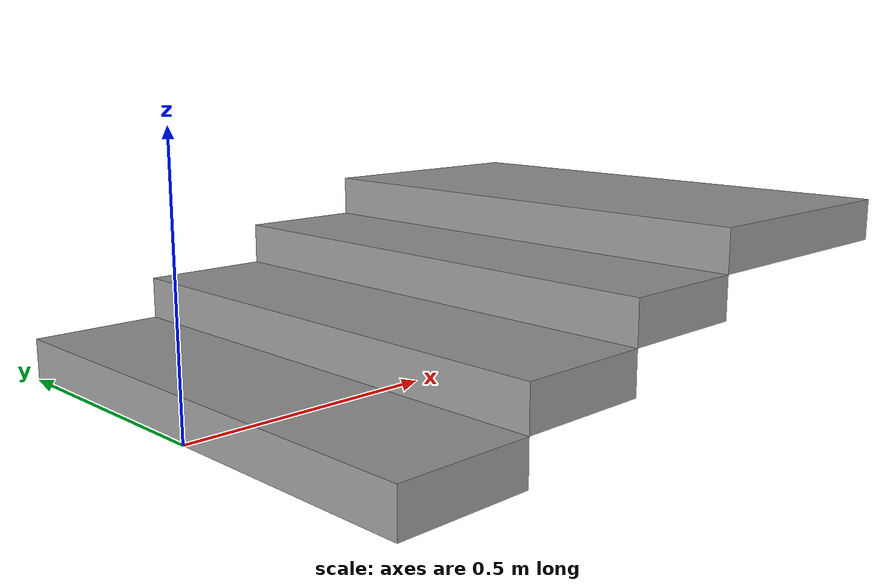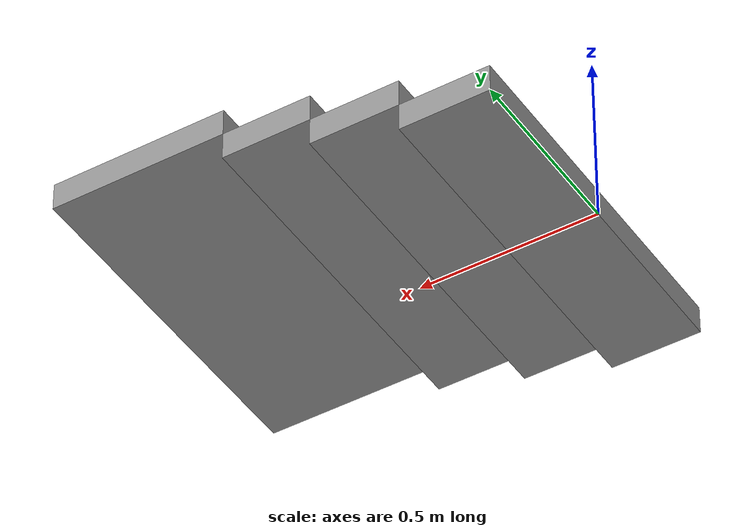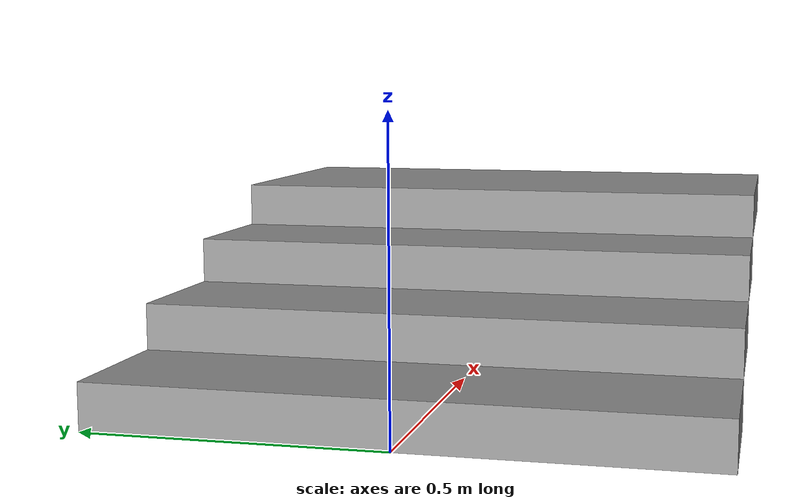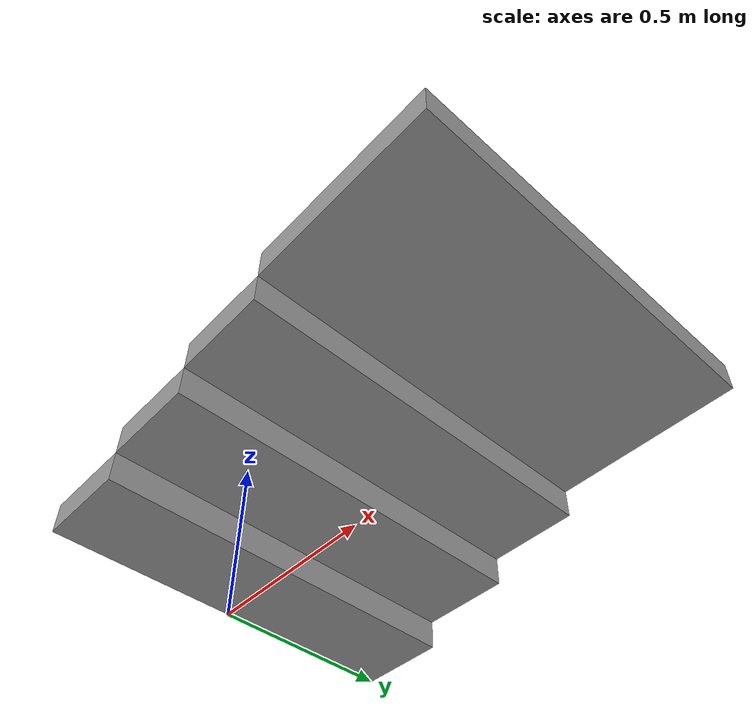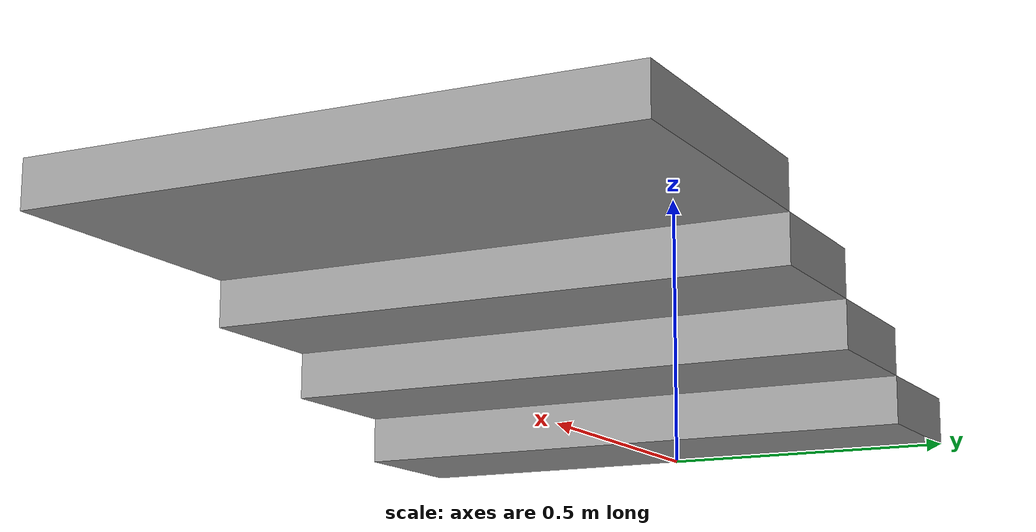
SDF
<?xml version="1.0" ?>
<sdf version="1.6">
  <model name="parametric_stairs">
    <static>true</static>
    <link name="step_0">
      <pose>0.125 0 0.04 0 0 0</pose>
      <collision name="collision">
        <geometry>
          <box>
            <size>0.25 1.0 0.08</size>
          </box>
        </geometry>
      </collision>
      <visual name="visual">
        <geometry>
          <box>
            <size>0.25 1.0 0.08</size>
          </box>
        </geometry>
        <material>
          <script>
            <uri>file://media/materials/scripts/gazebo.material</uri>
            <name>Gazebo/Grey</name>
          </script>
        </material>
      </visual>
    </link>
    <link name="step_1">
      <pose>0.375 0 0.12 0 0 0</pose>
      <collision name="collision">
        <geometry>
          <box>
            <size>0.25 1.0 0.08</size>
          </box>
        </geometry>
      </collision>
      <visual name="visual">
        <geometry>
          <box>
            <size>0.25 1.0 0.08</size>
          </box>
        </geometry>
        <material>
          <script>
            <uri>file://media/materials/scripts/gazebo.material</uri>
            <name>Gazebo/Grey</name>
          </script>
        </material>
      </visual>
    </link>
    <link name="step_2">
      <pose>0.625 0 0.2 0 0 0</pose>
      <collision name="collision">
        <geometry>
          <box>
            <size>0.25 1.0 0.08</size>
          </box>
        </geometry>
      </collision>
      <visual name="visual">
        <geometry>
          <box>
            <size>0.25 1.0 0.08</size>
          </box>
        </geometry>
        <material>
          <script>
            <uri>file://media/materials/scripts/gazebo.material</uri>
            <name>Gazebo/Grey</name>
          </script>
        </material>
      </visual>
    </link>
    <link name="step_3">
      <pose>1.0 0 0.28 0 0 0</pose>
      <collision name="collision">
        <geometry>
          <box>
            <size>0.5 1.0 0.08</size>
          </box>
        </geometry>
      </collision>
      <visual name="visual">
        <geometry>
          <box>
            <size>0.5 1.0 0.08</size>
          </box>
        </geometry>
        <material>
          <script>
            <uri>file://media/materials/scripts/gazebo.material</uri>
            <name>Gazebo/Grey</name>
          </script>
        </material>
      </visual>
    </link>
  </model>
</sdf>
